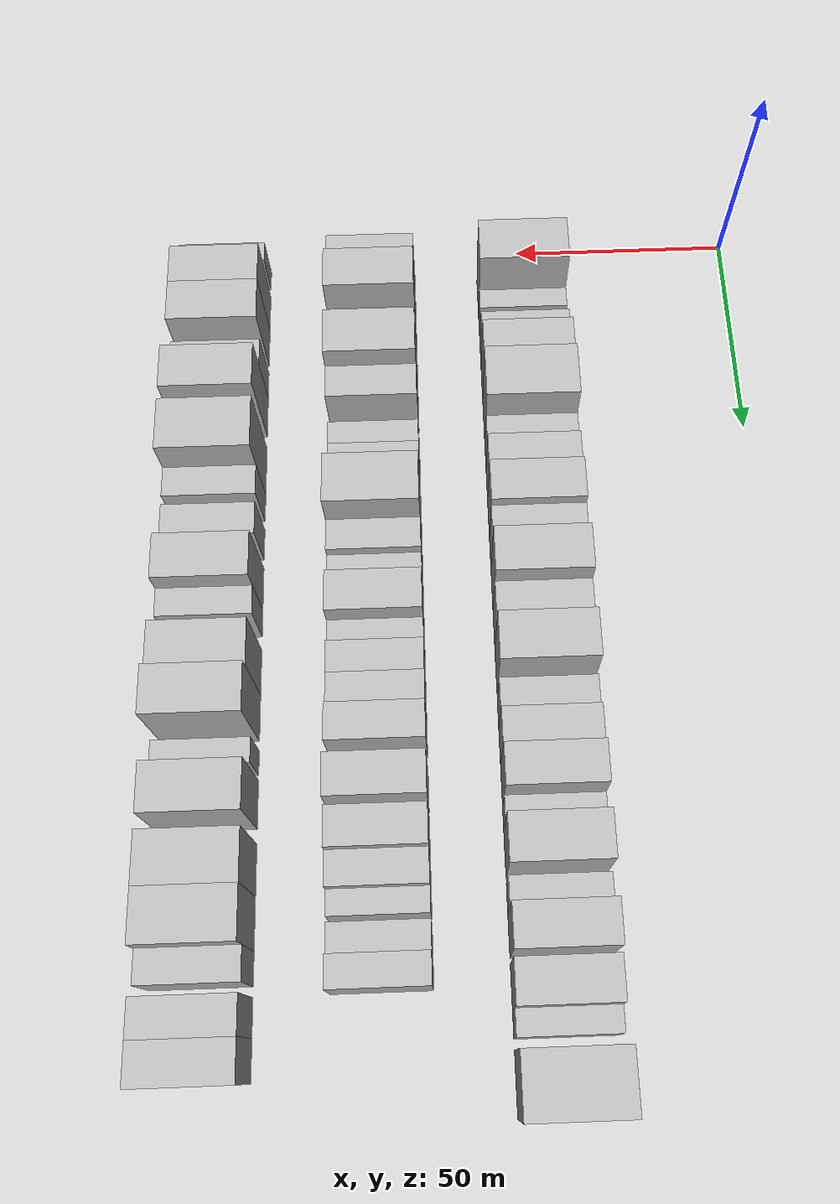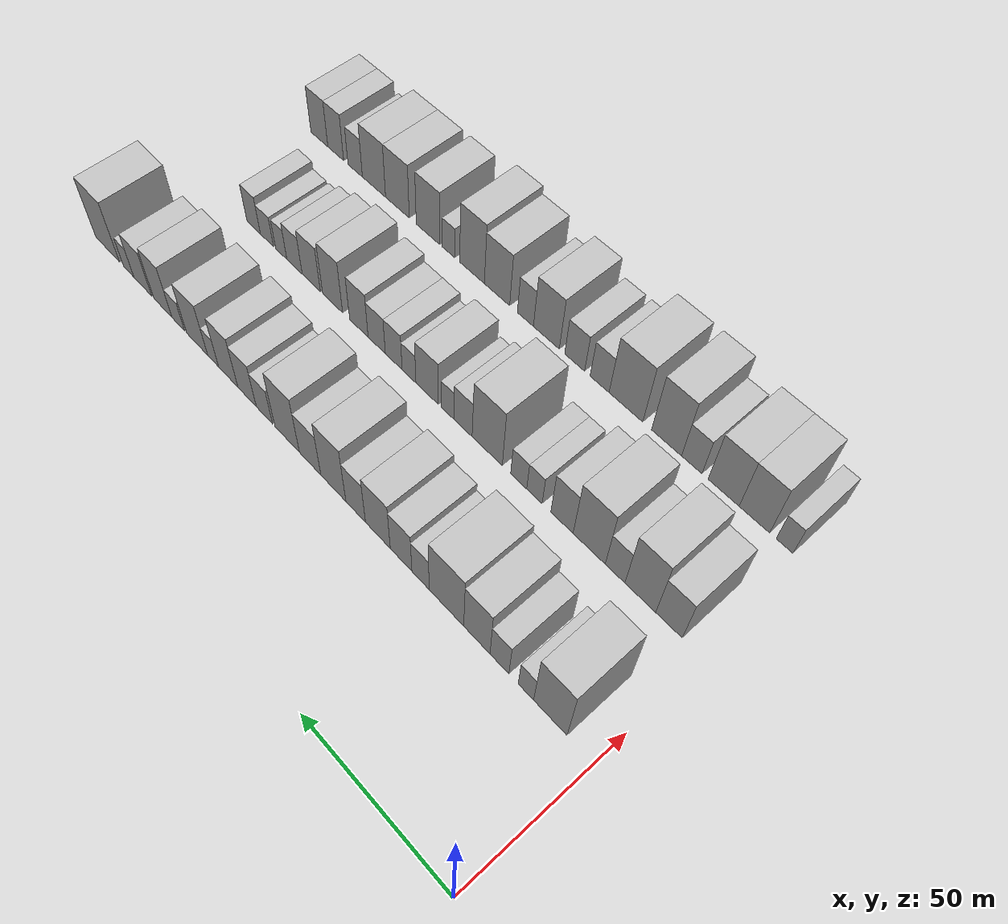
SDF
<sdf version="1.6">
 <world name="default">
  <model name="building_42">
   <static>1</static>
   <pose>50.0000 13.3271 0 0.000000 0.000000 0.000000</pose>
   <link name="link">
    <pose>0 0 12.00 0 0 0</pose>
    <collision name="collision"><geometry><box><size>20.0000 10.3897 24.0000</size></box></geometry></collision>
    <visual name="visual">
     <cast_shadows>0</cast_shadows>
     <geometry><box><size>20.0000 10.3897 24.0000</size></box></geometry>
     <material>
      <script>
       <uri>model://HANNAS_wall/materials/scripts</uri>
       <uri>model://HANNAS_wall/materials/textures</uri>
       <name>vrc/HANNAS_wall</name>
      </script>
     </material>
    </visual>
   </link>
  </model>
  <model name="building_43">
   <static>1</static>
   <pose>50.0000 20.9626 0 0.000000 0.000000 0.000000</pose>
   <link name="link">
    <pose>0 0 6.00 0 0 0</pose>
    <collision name="collision"><geometry><box><size>20.0000 4.8814 12.0000</size></box></geometry></collision>
    <visual name="visual">
     <cast_shadows>0</cast_shadows>
     <geometry><box><size>20.0000 4.8814 12.0000</size></box></geometry>
     <material>
      <script>
       <uri>model://HANNAS_wall/materials/scripts</uri>
       <uri>model://HANNAS_wall/materials/textures</uri>
       <name>vrc/HANNAS_wall</name>
      </script>
     </material>
    </visual>
   </link>
  </model>
  <model name="building_44">
   <static>1</static>
   <pose>50.0000 29.4781 0 0.000000 0.000000 0.000000</pose>
   <link name="link">
    <pose>0 0 7.50 0 0 0</pose>
    <collision name="collision"><geometry><box><size>20.0000 6.1497 15.0000</size></box></geometry></collision>
    <visual name="visual">
     <cast_shadows>0</cast_shadows>
     <geometry><box><size>20.0000 6.1497 15.0000</size></box></geometry>
     <material>
      <script>
       <uri>model://HANNAS_wall/materials/scripts</uri>
       <uri>model://HANNAS_wall/materials/textures</uri>
       <name>vrc/HANNAS_wall</name>
      </script>
     </material>
    </visual>
   </link>
  </model>
  <model name="building_45">
   <static>1</static>
   <pose>50.0000 36.9410 0 0.000000 0.000000 0.000000</pose>
   <link name="link">
    <pose>0 0 10.50 0 0 0</pose>
    <collision name="collision"><geometry><box><size>20.0000 8.7761 21.0000</size></box></geometry></collision>
    <visual name="visual">
     <cast_shadows>0</cast_shadows>
     <geometry><box><size>20.0000 8.7761 21.0000</size></box></geometry>
     <material>
      <script>
       <uri>model://HANNAS_wall/materials/scripts</uri>
       <uri>model://HANNAS_wall/materials/textures</uri>
       <name>vrc/HANNAS_wall</name>
      </script>
     </material>
    </visual>
   </link>
  </model>
  <model name="building_46">
   <static>1</static>
   <pose>50.0000 47.2723 0 0.000000 0.000000 0.000000</pose>
   <link name="link">
    <pose>0 0 12.00 0 0 0</pose>
    <collision name="collision"><geometry><box><size>20.0000 11.8866 24.0000</size></box></geometry></collision>
    <visual name="visual">
     <cast_shadows>0</cast_shadows>
     <geometry><box><size>20.0000 11.8866 24.0000</size></box></geometry>
     <material>
      <script>
       <uri>model://HANNAS_wall/materials/scripts</uri>
       <uri>model://HANNAS_wall/materials/textures</uri>
       <name>vrc/HANNAS_wall</name>
      </script>
     </material>
    </visual>
   </link>
  </model>
  <model name="building_47">
   <static>1</static>
   <pose>50.0000 56.2705 0 0.000000 0.000000 0.000000</pose>
   <link name="link">
    <pose>0 0 7.50 0 0 0</pose>
    <collision name="collision"><geometry><box><size>20.0000 6.1097 15.0000</size></box></geometry></collision>
    <visual name="visual">
     <cast_shadows>0</cast_shadows>
     <geometry><box><size>20.0000 6.1097 15.0000</size></box></geometry>
     <material>
      <script>
       <uri>model://HANNAS_wall/materials/scripts</uri>
       <uri>model://HANNAS_wall/materials/textures</uri>
       <name>vrc/HANNAS_wall</name>
      </script>
     </material>
    </visual>
   </link>
  </model>
  <model name="building_48">
   <static>1</static>
   <pose>50.0000 63.2182 0 0.000000 0.000000 0.000000</pose>
   <link name="link">
    <pose>0 0 9.00 0 0 0</pose>
    <collision name="collision"><geometry><box><size>20.0000 7.7858 18.0000</size></box></geometry></collision>
    <visual name="visual">
     <cast_shadows>0</cast_shadows>
     <geometry><box><size>20.0000 7.7858 18.0000</size></box></geometry>
     <material>
      <script>
       <uri>model://HANNAS_wall/materials/scripts</uri>
       <uri>model://HANNAS_wall/materials/textures</uri>
       <name>vrc/HANNAS_wall</name>
      </script>
     </material>
    </visual>
   </link>
  </model>
  <model name="building_49">
   <static>1</static>
   <pose>50.0000 71.7059 0 0.000000 0.000000 0.000000</pose>
   <link name="link">
    <pose>0 0 10.50 0 0 0</pose>
    <collision name="collision"><geometry><box><size>20.0000 9.1894 21.0000</size></box></geometry></collision>
    <visual name="visual">
     <cast_shadows>0</cast_shadows>
     <geometry><box><size>20.0000 9.1894 21.0000</size></box></geometry>
     <material>
      <script>
       <uri>model://HANNAS_wall/materials/scripts</uri>
       <uri>model://HANNAS_wall/materials/textures</uri>
       <name>vrc/HANNAS_wall</name>
      </script>
     </material>
    </visual>
   </link>
  </model>
  <model name="building_50">
   <static>1</static>
   <pose>50.0000 80.0003 0 0.000000 0.000000 0.000000</pose>
   <link name="link">
    <pose>0 0 9.00 0 0 0</pose>
    <collision name="collision"><geometry><box><size>20.0000 7.3994 18.0000</size></box></geometry></collision>
    <visual name="visual">
     <cast_shadows>0</cast_shadows>
     <geometry><box><size>20.0000 7.3994 18.0000</size></box></geometry>
     <material>
      <script>
       <uri>model://HANNAS_wall/materials/scripts</uri>
       <uri>model://HANNAS_wall/materials/textures</uri>
       <name>vrc/HANNAS_wall</name>
      </script>
     </material>
    </visual>
   </link>
  </model>
  <model name="building_51">
   <static>1</static>
   <pose>50.0000 88.5457 0 0.000000 0.000000 0.000000</pose>
   <link name="link">
    <pose>0 0 12.00 0 0 0</pose>
    <collision name="collision"><geometry><box><size>20.0000 9.6916 24.0000</size></box></geometry></collision>
    <visual name="visual">
     <cast_shadows>0</cast_shadows>
     <geometry><box><size>20.0000 9.6916 24.0000</size></box></geometry>
     <material>
      <script>
       <uri>model://HANNAS_wall/materials/scripts</uri>
       <uri>model://HANNAS_wall/materials/textures</uri>
       <name>vrc/HANNAS_wall</name>
      </script>
     </material>
    </visual>
   </link>
  </model>
  <model name="building_52">
   <static>1</static>
   <pose>50.0000 97.6655 0 0.000000 0.000000 0.000000</pose>
   <link name="link">
    <pose>0 0 9.00 0 0 0</pose>
    <collision name="collision"><geometry><box><size>20.0000 8.5480 18.0000</size></box></geometry></collision>
    <visual name="visual">
     <cast_shadows>0</cast_shadows>
     <geometry><box><size>20.0000 8.5480 18.0000</size></box></geometry>
     <material>
      <script>
       <uri>model://HANNAS_wall/materials/scripts</uri>
       <uri>model://HANNAS_wall/materials/textures</uri>
       <name>vrc/HANNAS_wall</name>
      </script>
     </material>
    </visual>
   </link>
  </model>
  <model name="building_53">
   <static>1</static>
   <pose>50.0000 106.9367 0 0.000000 0.000000 0.000000</pose>
   <link name="link">
    <pose>0 0 12.00 0 0 0</pose>
    <collision name="collision"><geometry><box><size>20.0000 9.9942 24.0000</size></box></geometry></collision>
    <visual name="visual">
     <cast_shadows>0</cast_shadows>
     <geometry><box><size>20.0000 9.9942 24.0000</size></box></geometry>
     <material>
      <script>
       <uri>model://HANNAS_wall/materials/scripts</uri>
       <uri>model://HANNAS_wall/materials/textures</uri>
       <name>vrc/HANNAS_wall</name>
      </script>
     </material>
    </visual>
   </link>
  </model>
  <model name="building_54">
   <static>1</static>
   <pose>50.0000 116.3106 0 0.000000 0.000000 0.000000</pose>
   <link name="link">
    <pose>0 0 7.50 0 0 0</pose>
    <collision name="collision"><geometry><box><size>20.0000 6.7537 15.0000</size></box></geometry></collision>
    <visual name="visual">
     <cast_shadows>0</cast_shadows>
     <geometry><box><size>20.0000 6.7537 15.0000</size></box></geometry>
     <material>
      <script>
       <uri>model://HANNAS_wall/materials/scripts</uri>
       <uri>model://HANNAS_wall/materials/textures</uri>
       <name>vrc/HANNAS_wall</name>
      </script>
     </material>
    </visual>
   </link>
  </model>
  <model name="building_55">
   <static>1</static>
   <pose>50.0000 123.6317 0 0.000000 0.000000 0.000000</pose>
   <link name="link">
    <pose>0 0 9.00 0 0 0</pose>
    <collision name="collision"><geometry><box><size>20.0000 7.8885 18.0000</size></box></geometry></collision>
    <visual name="visual">
     <cast_shadows>0</cast_shadows>
     <geometry><box><size>20.0000 7.8885 18.0000</size></box></geometry>
     <material>
      <script>
       <uri>model://HANNAS_wall/materials/scripts</uri>
       <uri>model://HANNAS_wall/materials/textures</uri>
       <name>vrc/HANNAS_wall</name>
      </script>
     </material>
    </visual>
   </link>
  </model>
  <model name="building_56">
   <static>1</static>
   <pose>50.0000 131.7996 0 0.000000 0.000000 0.000000</pose>
   <link name="link">
    <pose>0 0 10.50 0 0 0</pose>
    <collision name="collision"><geometry><box><size>20.0000 8.4473 21.0000</size></box></geometry></collision>
    <visual name="visual">
     <cast_shadows>0</cast_shadows>
     <geometry><box><size>20.0000 8.4473 21.0000</size></box></geometry>
     <material>
      <script>
       <uri>model://HANNAS_wall/materials/scripts</uri>
       <uri>model://HANNAS_wall/materials/textures</uri>
       <name>vrc/HANNAS_wall</name>
      </script>
     </material>
    </visual>
   </link>
  </model>
  <model name="building_57">
   <static>1</static>
   <pose>50.0000 138.4441 0 0.000000 0.000000 0.000000</pose>
   <link name="link">
    <pose>0 0 6.00 0 0 0</pose>
    <collision name="collision"><geometry><box><size>20.0000 4.8417 12.0000</size></box></geometry></collision>
    <visual name="visual">
     <cast_shadows>0</cast_shadows>
     <geometry><box><size>20.0000 4.8417 12.0000</size></box></geometry>
     <material>
      <script>
       <uri>model://HANNAS_wall/materials/scripts</uri>
       <uri>model://HANNAS_wall/materials/textures</uri>
       <name>vrc/HANNAS_wall</name>
      </script>
     </material>
    </visual>
   </link>
  </model>
  <model name="building_58">
   <static>1</static>
   <pose>50.0000 145.6218 0 0.000000 0.000000 0.000000</pose>
   <link name="link">
    <pose>0 0 10.50 0 0 0</pose>
    <collision name="collision"><geometry><box><size>20.0000 9.5137 21.0000</size></box></geometry></collision>
    <visual name="visual">
     <cast_shadows>0</cast_shadows>
     <geometry><box><size>20.0000 9.5137 21.0000</size></box></geometry>
     <material>
      <script>
       <uri>model://HANNAS_wall/materials/scripts</uri>
       <uri>model://HANNAS_wall/materials/textures</uri>
       <name>vrc/HANNAS_wall</name>
      </script>
     </material>
    </visual>
   </link>
  </model>
  <model name="building_59">
   <static>1</static>
   <pose>50.0000 154.2735 0 0.000000 0.000000 0.000000</pose>
   <link name="link">
    <pose>0 0 6.00 0 0 0</pose>
    <collision name="collision"><geometry><box><size>20.0000 5.7897 12.0000</size></box></geometry></collision>
    <visual name="visual">
     <cast_shadows>0</cast_shadows>
     <geometry><box><size>20.0000 5.7897 12.0000</size></box></geometry>
     <material>
      <script>
       <uri>model://HANNAS_wall/materials/scripts</uri>
       <uri>model://HANNAS_wall/materials/textures</uri>
       <name>vrc/HANNAS_wall</name>
      </script>
     </material>
    </visual>
   </link>
  </model>
  <model name="building_60">
   <static>1</static>
   <pose>50.0000 161.4640 0 0.000000 0.000000 0.000000</pose>
   <link name="link">
    <pose>0 0 10.50 0 0 0</pose>
    <collision name="collision"><geometry><box><size>20.0000 8.5913 21.0000</size></box></geometry></collision>
    <visual name="visual">
     <cast_shadows>0</cast_shadows>
     <geometry><box><size>20.0000 8.5913 21.0000</size></box></geometry>
     <material>
      <script>
       <uri>model://HANNAS_wall/materials/scripts</uri>
       <uri>model://HANNAS_wall/materials/textures</uri>
       <name>vrc/HANNAS_wall</name>
      </script>
     </material>
    </visual>
   </link>
  </model>
  <model name="building_61">
   <static>1</static>
   <pose>50.0000 171.0575 0 0.000000 0.000000 0.000000</pose>
   <link name="link">
    <pose>0 0 9.00 0 0 0</pose>
    <collision name="collision"><geometry><box><size>20.0000 8.5957 18.0000</size></box></geometry></collision>
    <visual name="visual">
     <cast_shadows>0</cast_shadows>
     <geometry><box><size>20.0000 8.5957 18.0000</size></box></geometry>
     <material>
      <script>
       <uri>model://HANNAS_wall/materials/scripts</uri>
       <uri>model://HANNAS_wall/materials/textures</uri>
       <name>vrc/HANNAS_wall</name>
      </script>
     </material>
    </visual>
   </link>
  </model>
  <model name="building_62">
   <static>1</static>
   <pose>50.0000 177.9104 0 0.000000 0.000000 0.000000</pose>
   <link name="link">
    <pose>0 0 6.00 0 0 0</pose>
    <collision name="collision"><geometry><box><size>20.0000 5.1101 12.0000</size></box></geometry></collision>
    <visual name="visual">
     <cast_shadows>0</cast_shadows>
     <geometry><box><size>20.0000 5.1101 12.0000</size></box></geometry>
     <material>
      <script>
       <uri>model://HANNAS_wall/materials/scripts</uri>
       <uri>model://HANNAS_wall/materials/textures</uri>
       <name>vrc/HANNAS_wall</name>
      </script>
     </material>
    </visual>
   </link>
  </model>
  <model name="building_63">
   <static>1</static>
   <pose>50.0000 188.4641 0 0.000000 0.000000 0.000000</pose>
   <link name="link">
    <pose>0 0 12.00 0 0 0</pose>
    <collision name="collision"><geometry><box><size>20.0000 11.9973 24.0000</size></box></geometry></collision>
    <visual name="visual">
     <cast_shadows>0</cast_shadows>
     <geometry><box><size>20.0000 11.9973 24.0000</size></box></geometry>
     <material>
      <script>
       <uri>model://HANNAS_wall/materials/scripts</uri>
       <uri>model://HANNAS_wall/materials/textures</uri>
       <name>vrc/HANNAS_wall</name>
      </script>
     </material>
    </visual>
   </link>
  </model>
  <model name="building_128">
   <static>1</static>
   <pose>85.0000 10.6261 0 0.000000 0.000000 0.000000</pose>
   <link name="link">
    <pose>0 0 9.00 0 0 0</pose>
    <collision name="collision"><geometry><box><size>20.0000 8.1376 18.0000</size></box></geometry></collision>
    <visual name="visual">
     <cast_shadows>0</cast_shadows>
     <geometry><box><size>20.0000 8.1376 18.0000</size></box></geometry>
     <material>
      <script>
       <uri>model://HANNAS_wall/materials/scripts</uri>
       <uri>model://HANNAS_wall/materials/textures</uri>
       <name>vrc/HANNAS_wall</name>
      </script>
     </material>
    </visual>
   </link>
  </model>
  <model name="building_129">
   <static>1</static>
   <pose>85.0000 19.5484 0 0.000000 0.000000 0.000000</pose>
   <link name="link">
    <pose>0 0 12.00 0 0 0</pose>
    <collision name="collision"><geometry><box><size>20.0000 9.7070 24.0000</size></box></geometry></collision>
    <visual name="visual">
     <cast_shadows>0</cast_shadows>
     <geometry><box><size>20.0000 9.7070 24.0000</size></box></geometry>
     <material>
      <script>
       <uri>model://HANNAS_wall/materials/scripts</uri>
       <uri>model://HANNAS_wall/materials/textures</uri>
       <name>vrc/HANNAS_wall</name>
      </script>
     </material>
    </visual>
   </link>
  </model>
  <model name="building_130">
   <static>1</static>
   <pose>85.0000 27.5702 0 0.000000 0.000000 0.000000</pose>
   <link name="link">
    <pose>0 0 7.50 0 0 0</pose>
    <collision name="collision"><geometry><box><size>20.0000 6.3366 15.0000</size></box></geometry></collision>
    <visual name="visual">
     <cast_shadows>0</cast_shadows>
     <geometry><box><size>20.0000 6.3366 15.0000</size></box></geometry>
     <material>
      <script>
       <uri>model://HANNAS_wall/materials/scripts</uri>
       <uri>model://HANNAS_wall/materials/textures</uri>
       <name>vrc/HANNAS_wall</name>
      </script>
     </material>
    </visual>
   </link>
  </model>
  <model name="building_131">
   <static>1</static>
   <pose>85.0000 36.0484 0 0.000000 0.000000 0.000000</pose>
   <link name="link">
    <pose>0 0 12.00 0 0 0</pose>
    <collision name="collision"><geometry><box><size>20.0000 10.6198 24.0000</size></box></geometry></collision>
    <visual name="visual">
     <cast_shadows>0</cast_shadows>
     <geometry><box><size>20.0000 10.6198 24.0000</size></box></geometry>
     <material>
      <script>
       <uri>model://HANNAS_wall/materials/scripts</uri>
       <uri>model://HANNAS_wall/materials/textures</uri>
       <name>vrc/HANNAS_wall</name>
      </script>
     </material>
    </visual>
   </link>
  </model>
  <model name="building_132">
   <static>1</static>
   <pose>85.0000 45.1411 0 0.000000 0.000000 0.000000</pose>
   <link name="link">
    <pose>0 0 9.00 0 0 0</pose>
    <collision name="collision"><geometry><box><size>20.0000 7.5656 18.0000</size></box></geometry></collision>
    <visual name="visual">
     <cast_shadows>0</cast_shadows>
     <geometry><box><size>20.0000 7.5656 18.0000</size></box></geometry>
     <material>
      <script>
       <uri>model://HANNAS_wall/materials/scripts</uri>
       <uri>model://HANNAS_wall/materials/textures</uri>
       <name>vrc/HANNAS_wall</name>
      </script>
     </material>
    </visual>
   </link>
  </model>
  <model name="building_133">
   <static>1</static>
   <pose>85.0000 54.5978 0 0.000000 0.000000 0.000000</pose>
   <link name="link">
    <pose>0 0 6.00 0 0 0</pose>
    <collision name="collision"><geometry><box><size>20.0000 5.3477 12.0000</size></box></geometry></collision>
    <visual name="visual">
     <cast_shadows>0</cast_shadows>
     <geometry><box><size>20.0000 5.3477 12.0000</size></box></geometry>
     <material>
      <script>
       <uri>model://HANNAS_wall/materials/scripts</uri>
       <uri>model://HANNAS_wall/materials/textures</uri>
       <name>vrc/HANNAS_wall</name>
      </script>
     </material>
    </visual>
   </link>
  </model>
  <model name="building_134">
   <static>1</static>
   <pose>85.0000 60.1131 0 0.000000 0.000000 0.000000</pose>
   <link name="link">
    <pose>0 0 6.00 0 0 0</pose>
    <collision name="collision"><geometry><box><size>20.0000 5.6829 12.0000</size></box></geometry></collision>
    <visual name="visual">
     <cast_shadows>0</cast_shadows>
     <geometry><box><size>20.0000 5.6829 12.0000</size></box></geometry>
     <material>
      <script>
       <uri>model://HANNAS_wall/materials/scripts</uri>
       <uri>model://HANNAS_wall/materials/textures</uri>
       <name>vrc/HANNAS_wall</name>
      </script>
     </material>
    </visual>
   </link>
  </model>
  <model name="building_135">
   <static>1</static>
   <pose>85.0000 71.4660 0 0.000000 0.000000 0.000000</pose>
   <link name="link">
    <pose>0 0 12.00 0 0 0</pose>
    <collision name="collision"><geometry><box><size>20.0000 11.0228 24.0000</size></box></geometry></collision>
    <visual name="visual">
     <cast_shadows>0</cast_shadows>
     <geometry><box><size>20.0000 11.0228 24.0000</size></box></geometry>
     <material>
      <script>
       <uri>model://HANNAS_wall/materials/scripts</uri>
       <uri>model://HANNAS_wall/materials/textures</uri>
       <name>vrc/HANNAS_wall</name>
      </script>
     </material>
    </visual>
   </link>
  </model>
  <model name="building_136">
   <static>1</static>
   <pose>85.0000 80.4080 0 0.000000 0.000000 0.000000</pose>
   <link name="link">
    <pose>0 0 7.50 0 0 0</pose>
    <collision name="collision"><geometry><box><size>20.0000 6.8613 15.0000</size></box></geometry></collision>
    <visual name="visual">
     <cast_shadows>0</cast_shadows>
     <geometry><box><size>20.0000 6.8613 15.0000</size></box></geometry>
     <material>
      <script>
       <uri>model://HANNAS_wall/materials/scripts</uri>
       <uri>model://HANNAS_wall/materials/textures</uri>
       <name>vrc/HANNAS_wall</name>
      </script>
     </material>
    </visual>
   </link>
  </model>
  <model name="building_137">
   <static>1</static>
   <pose>85.0000 86.2534 0 0.000000 0.000000 0.000000</pose>
   <link name="link">
    <pose>0 0 6.00 0 0 0</pose>
    <collision name="collision"><geometry><box><size>20.0000 4.8294 12.0000</size></box></geometry></collision>
    <visual name="visual">
     <cast_shadows>0</cast_shadows>
     <geometry><box><size>20.0000 4.8294 12.0000</size></box></geometry>
     <material>
      <script>
       <uri>model://HANNAS_wall/materials/scripts</uri>
       <uri>model://HANNAS_wall/materials/textures</uri>
       <name>vrc/HANNAS_wall</name>
      </script>
     </material>
    </visual>
   </link>
  </model>
  <model name="building_138">
   <static>1</static>
   <pose>85.0000 94.0360 0 0.000000 0.000000 0.000000</pose>
   <link name="link">
    <pose>0 0 9.00 0 0 0</pose>
    <collision name="collision"><geometry><box><size>20.0000 8.7357 18.0000</size></box></geometry></collision>
    <visual name="visual">
     <cast_shadows>0</cast_shadows>
     <geometry><box><size>20.0000 8.7357 18.0000</size></box></geometry>
     <material>
      <script>
       <uri>model://HANNAS_wall/materials/scripts</uri>
       <uri>model://HANNAS_wall/materials/textures</uri>
       <name>vrc/HANNAS_wall</name>
      </script>
     </material>
    </visual>
   </link>
  </model>
  <model name="building_139">
   <static>1</static>
   <pose>85.0000 101.1326 0 0.000000 0.000000 0.000000</pose>
   <link name="link">
    <pose>0 0 6.00 0 0 0</pose>
    <collision name="collision"><geometry><box><size>20.0000 5.4576 12.0000</size></box></geometry></collision>
    <visual name="visual">
     <cast_shadows>0</cast_shadows>
     <geometry><box><size>20.0000 5.4576 12.0000</size></box></geometry>
     <material>
      <script>
       <uri>model://HANNAS_wall/materials/scripts</uri>
       <uri>model://HANNAS_wall/materials/textures</uri>
       <name>vrc/HANNAS_wall</name>
      </script>
     </material>
    </visual>
   </link>
  </model>
  <model name="building_140">
   <static>1</static>
   <pose>85.0000 107.2269 0 0.000000 0.000000 0.000000</pose>
   <link name="link">
    <pose>0 0 7.50 0 0 0</pose>
    <collision name="collision"><geometry><box><size>20.0000 6.7311 15.0000</size></box></geometry></collision>
    <visual name="visual">
     <cast_shadows>0</cast_shadows>
     <geometry><box><size>20.0000 6.7311 15.0000</size></box></geometry>
     <material>
      <script>
       <uri>model://HANNAS_wall/materials/scripts</uri>
       <uri>model://HANNAS_wall/materials/textures</uri>
       <name>vrc/HANNAS_wall</name>
      </script>
     </material>
    </visual>
   </link>
  </model>
  <model name="building_141">
   <static>1</static>
   <pose>85.0000 114.1103 0 0.000000 0.000000 0.000000</pose>
   <link name="link">
    <pose>0 0 7.50 0 0 0</pose>
    <collision name="collision"><geometry><box><size>20.0000 7.0357 15.0000</size></box></geometry></collision>
    <visual name="visual">
     <cast_shadows>0</cast_shadows>
     <geometry><box><size>20.0000 7.0357 15.0000</size></box></geometry>
     <material>
      <script>
       <uri>model://HANNAS_wall/materials/scripts</uri>
       <uri>model://HANNAS_wall/materials/textures</uri>
       <name>vrc/HANNAS_wall</name>
      </script>
     </material>
    </visual>
   </link>
  </model>
  <model name="building_142">
   <static>1</static>
   <pose>85.0000 121.4704 0 0.000000 0.000000 0.000000</pose>
   <link name="link">
    <pose>0 0 9.00 0 0 0</pose>
    <collision name="collision"><geometry><box><size>20.0000 7.6845 18.0000</size></box></geometry></collision>
    <visual name="visual">
     <cast_shadows>0</cast_shadows>
     <geometry><box><size>20.0000 7.6845 18.0000</size></box></geometry>
     <material>
      <script>
       <uri>model://HANNAS_wall/materials/scripts</uri>
       <uri>model://HANNAS_wall/materials/textures</uri>
       <name>vrc/HANNAS_wall</name>
      </script>
     </material>
    </visual>
   </link>
  </model>
  <model name="building_143">
   <static>1</static>
   <pose>85.0000 132.5855 0 0.000000 0.000000 0.000000</pose>
   <link name="link">
    <pose>0 0 10.50 0 0 0</pose>
    <collision name="collision"><geometry><box><size>20.0000 8.5458 21.0000</size></box></geometry></collision>
    <visual name="visual">
     <cast_shadows>0</cast_shadows>
     <geometry><box><size>20.0000 8.5458 21.0000</size></box></geometry>
     <material>
      <script>
       <uri>model://HANNAS_wall/materials/scripts</uri>
       <uri>model://HANNAS_wall/materials/textures</uri>
       <name>vrc/HANNAS_wall</name>
      </script>
     </material>
    </visual>
   </link>
  </model>
  <model name="building_144">
   <static>1</static>
   <pose>85.0000 141.8551 0 0.000000 0.000000 0.000000</pose>
   <link name="link">
    <pose>0 0 9.00 0 0 0</pose>
    <collision name="collision"><geometry><box><size>20.0000 7.9935 18.0000</size></box></geometry></collision>
    <visual name="visual">
     <cast_shadows>0</cast_shadows>
     <geometry><box><size>20.0000 7.9935 18.0000</size></box></geometry>
     <material>
      <script>
       <uri>model://HANNAS_wall/materials/scripts</uri>
       <uri>model://HANNAS_wall/materials/textures</uri>
       <name>vrc/HANNAS_wall</name>
      </script>
     </material>
    </visual>
   </link>
  </model>
  <model name="building_145">
   <static>1</static>
   <pose>85.0000 149.2985 0 0.000000 0.000000 0.000000</pose>
   <link name="link">
    <pose>0 0 7.50 0 0 0</pose>
    <collision name="collision"><geometry><box><size>20.0000 6.8933 15.0000</size></box></geometry></collision>
    <visual name="visual">
     <cast_shadows>0</cast_shadows>
     <geometry><box><size>20.0000 6.8933 15.0000</size></box></geometry>
     <material>
      <script>
       <uri>model://HANNAS_wall/materials/scripts</uri>
       <uri>model://HANNAS_wall/materials/textures</uri>
       <name>vrc/HANNAS_wall</name>
      </script>
     </material>
    </visual>
   </link>
  </model>
  <model name="building_146">
   <static>1</static>
   <pose>85.0000 155.2860 0 0.000000 0.000000 0.000000</pose>
   <link name="link">
    <pose>0 0 6.00 0 0 0</pose>
    <collision name="collision"><geometry><box><size>20.0000 5.0817 12.0000</size></box></geometry></collision>
    <visual name="visual">
     <cast_shadows>0</cast_shadows>
     <geometry><box><size>20.0000 5.0817 12.0000</size></box></geometry>
     <material>
      <script>
       <uri>model://HANNAS_wall/materials/scripts</uri>
       <uri>model://HANNAS_wall/materials/textures</uri>
       <name>vrc/HANNAS_wall</name>
      </script>
     </material>
    </visual>
   </link>
  </model>
  <model name="building_147">
   <static>1</static>
   <pose>85.0000 161.8084 0 0.000000 0.000000 0.000000</pose>
   <link name="link">
    <pose>0 0 6.00 0 0 0</pose>
    <collision name="collision"><geometry><box><size>20.0000 5.9630 12.0000</size></box></geometry></collision>
    <visual name="visual">
     <cast_shadows>0</cast_shadows>
     <geometry><box><size>20.0000 5.9630 12.0000</size></box></geometry>
     <material>
      <script>
       <uri>model://HANNAS_wall/materials/scripts</uri>
       <uri>model://HANNAS_wall/materials/textures</uri>
       <name>vrc/HANNAS_wall</name>
      </script>
     </material>
    </visual>
   </link>
  </model>
  <model name="building_148">
   <static>1</static>
   <pose>85.0000 167.9551 0 0.000000 0.000000 0.000000</pose>
   <link name="link">
    <pose>0 0 7.50 0 0 0</pose>
    <collision name="collision"><geometry><box><size>20.0000 6.3304 15.0000</size></box></geometry></collision>
    <visual name="visual">
     <cast_shadows>0</cast_shadows>
     <geometry><box><size>20.0000 6.3304 15.0000</size></box></geometry>
     <material>
      <script>
       <uri>model://HANNAS_wall/materials/scripts</uri>
       <uri>model://HANNAS_wall/materials/textures</uri>
       <name>vrc/HANNAS_wall</name>
      </script>
     </material>
    </visual>
   </link>
  </model>
  <model name="building_206">
   <static>1</static>
   <pose>120.0000 5.9389 0 0.000000 0.000000 0.000000</pose>
   <link name="link">
    <pose>0 0 6.00 0 0 0</pose>
    <collision name="collision"><geometry><box><size>20.0000 5.0818 12.0000</size></box></geometry></collision>
    <visual name="visual">
     <cast_shadows>0</cast_shadows>
     <geometry><box><size>20.0000 5.0818 12.0000</size></box></geometry>
     <material>
      <script>
       <uri>model://HANNAS_wall/materials/scripts</uri>
       <uri>model://HANNAS_wall/materials/textures</uri>
       <name>vrc/HANNAS_wall</name>
      </script>
     </material>
    </visual>
   </link>
  </model>
  <model name="building_207">
   <static>1</static>
   <pose>120.0000 15.2114 0 0.000000 0.000000 0.000000</pose>
   <link name="link">
    <pose>0 0 10.50 0 0 0</pose>
    <collision name="collision"><geometry><box><size>20.0000 9.4632 21.0000</size></box></geometry></collision>
    <visual name="visual">
     <cast_shadows>0</cast_shadows>
     <geometry><box><size>20.0000 9.4632 21.0000</size></box></geometry>
     <material>
      <script>
       <uri>model://HANNAS_wall/materials/scripts</uri>
       <uri>model://HANNAS_wall/materials/textures</uri>
       <name>vrc/HANNAS_wall</name>
      </script>
     </material>
    </visual>
   </link>
  </model>
  <model name="building_208">
   <static>1</static>
   <pose>120.0000 24.9006 0 0.000000 0.000000 0.000000</pose>
   <link name="link">
    <pose>0 0 10.50 0 0 0</pose>
    <collision name="collision"><geometry><box><size>20.0000 9.9153 21.0000</size></box></geometry></collision>
    <visual name="visual">
     <cast_shadows>0</cast_shadows>
     <geometry><box><size>20.0000 9.9153 21.0000</size></box></geometry>
     <material>
      <script>
       <uri>model://HANNAS_wall/materials/scripts</uri>
       <uri>model://HANNAS_wall/materials/textures</uri>
       <name>vrc/HANNAS_wall</name>
      </script>
     </material>
    </visual>
   </link>
  </model>
  <model name="building_209">
   <static>1</static>
   <pose>120.0000 35.2121 0 0.000000 0.000000 0.000000</pose>
   <link name="link">
    <pose>0 0 7.50 0 0 0</pose>
    <collision name="collision"><geometry><box><size>20.0000 6.7078 15.0000</size></box></geometry></collision>
    <visual name="visual">
     <cast_shadows>0</cast_shadows>
     <geometry><box><size>20.0000 6.7078 15.0000</size></box></geometry>
     <material>
      <script>
       <uri>model://HANNAS_wall/materials/scripts</uri>
       <uri>model://HANNAS_wall/materials/textures</uri>
       <name>vrc/HANNAS_wall</name>
      </script>
     </material>
    </visual>
   </link>
  </model>
  <model name="building_210">
   <static>1</static>
   <pose>120.0000 43.6137 0 0.000000 0.000000 0.000000</pose>
   <link name="link">
    <pose>0 0 12.00 0 0 0</pose>
    <collision name="collision"><geometry><box><size>20.0000 10.0954 24.0000</size></box></geometry></collision>
    <visual name="visual">
     <cast_shadows>0</cast_shadows>
     <geometry><box><size>20.0000 10.0954 24.0000</size></box></geometry>
     <material>
      <script>
       <uri>model://HANNAS_wall/materials/scripts</uri>
       <uri>model://HANNAS_wall/materials/textures</uri>
       <name>vrc/HANNAS_wall</name>
      </script>
     </material>
    </visual>
   </link>
  </model>
  <model name="building_211">
   <static>1</static>
   <pose>120.0000 57.5527 0 0.000000 0.000000 0.000000</pose>
   <link name="link">
    <pose>0 0 12.00 0 0 0</pose>
    <collision name="collision"><geometry><box><size>20.0000 11.7826 24.0000</size></box></geometry></collision>
    <visual name="visual">
     <cast_shadows>0</cast_shadows>
     <geometry><box><size>20.0000 11.7826 24.0000</size></box></geometry>
     <material>
      <script>
       <uri>model://HANNAS_wall/materials/scripts</uri>
       <uri>model://HANNAS_wall/materials/textures</uri>
       <name>vrc/HANNAS_wall</name>
      </script>
     </material>
    </visual>
   </link>
  </model>
  <model name="building_212">
   <static>1</static>
   <pose>120.0000 66.8361 0 0.000000 0.000000 0.000000</pose>
   <link name="link">
    <pose>0 0 7.50 0 0 0</pose>
    <collision name="collision"><geometry><box><size>20.0000 6.7840 15.0000</size></box></geometry></collision>
    <visual name="visual">
     <cast_shadows>0</cast_shadows>
     <geometry><box><size>20.0000 6.7840 15.0000</size></box></geometry>
     <material>
      <script>
       <uri>model://HANNAS_wall/materials/scripts</uri>
       <uri>model://HANNAS_wall/materials/textures</uri>
       <name>vrc/HANNAS_wall</name>
      </script>
     </material>
    </visual>
   </link>
  </model>
  <model name="building_213">
   <static>1</static>
   <pose>120.0000 75.8777 0 0.000000 0.000000 0.000000</pose>
   <link name="link">
    <pose>0 0 7.50 0 0 0</pose>
    <collision name="collision"><geometry><box><size>20.0000 7.2993 15.0000</size></box></geometry></collision>
    <visual name="visual">
     <cast_shadows>0</cast_shadows>
     <geometry><box><size>20.0000 7.2993 15.0000</size></box></geometry>
     <material>
      <script>
       <uri>model://HANNAS_wall/materials/scripts</uri>
       <uri>model://HANNAS_wall/materials/textures</uri>
       <name>vrc/HANNAS_wall</name>
      </script>
     </material>
    </visual>
   </link>
  </model>
  <model name="building_214">
   <static>1</static>
   <pose>120.0000 86.4088 0 0.000000 0.000000 0.000000</pose>
   <link name="link">
    <pose>0 0 10.50 0 0 0</pose>
    <collision name="collision"><geometry><box><size>20.0000 9.7629 21.0000</size></box></geometry></collision>
    <visual name="visual">
     <cast_shadows>0</cast_shadows>
     <geometry><box><size>20.0000 9.7629 21.0000</size></box></geometry>
     <material>
      <script>
       <uri>model://HANNAS_wall/materials/scripts</uri>
       <uri>model://HANNAS_wall/materials/textures</uri>
       <name>vrc/HANNAS_wall</name>
      </script>
     </material>
    </visual>
   </link>
  </model>
  <model name="building_215">
   <static>1</static>
   <pose>120.0000 94.3725 0 0.000000 0.000000 0.000000</pose>
   <link name="link">
    <pose>0 0 7.50 0 0 0</pose>
    <collision name="collision"><geometry><box><size>20.0000 6.1644 15.0000</size></box></geometry></collision>
    <visual name="visual">
     <cast_shadows>0</cast_shadows>
     <geometry><box><size>20.0000 6.1644 15.0000</size></box></geometry>
     <material>
      <script>
       <uri>model://HANNAS_wall/materials/scripts</uri>
       <uri>model://HANNAS_wall/materials/textures</uri>
       <name>vrc/HANNAS_wall</name>
      </script>
     </material>
    </visual>
   </link>
  </model>
  <model name="building_216">
   <static>1</static>
   <pose>120.0000 105.4703 0 0.000000 0.000000 0.000000</pose>
   <link name="link">
    <pose>0 0 10.50 0 0 0</pose>
    <collision name="collision"><geometry><box><size>20.0000 10.0311 21.0000</size></box></geometry></collision>
    <visual name="visual">
     <cast_shadows>0</cast_shadows>
     <geometry><box><size>20.0000 10.0311 21.0000</size></box></geometry>
     <material>
      <script>
       <uri>model://HANNAS_wall/materials/scripts</uri>
       <uri>model://HANNAS_wall/materials/textures</uri>
       <name>vrc/HANNAS_wall</name>
      </script>
     </material>
    </visual>
   </link>
  </model>
  <model name="building_217">
   <static>1</static>
   <pose>120.0000 115.5039 0 0.000000 0.000000 0.000000</pose>
   <link name="link">
    <pose>0 0 12.00 0 0 0</pose>
    <collision name="collision"><geometry><box><size>20.0000 10.0362 24.0000</size></box></geometry></collision>
    <visual name="visual">
     <cast_shadows>0</cast_shadows>
     <geometry><box><size>20.0000 10.0362 24.0000</size></box></geometry>
     <material>
      <script>
       <uri>model://HANNAS_wall/materials/scripts</uri>
       <uri>model://HANNAS_wall/materials/textures</uri>
       <name>vrc/HANNAS_wall</name>
      </script>
     </material>
    </visual>
   </link>
  </model>
  <model name="building_218">
   <static>1</static>
   <pose>120.0000 125.1436 0 0.000000 0.000000 0.000000</pose>
   <link name="link">
    <pose>0 0 6.00 0 0 0</pose>
    <collision name="collision"><geometry><box><size>20.0000 5.2432 12.0000</size></box></geometry></collision>
    <visual name="visual">
     <cast_shadows>0</cast_shadows>
     <geometry><box><size>20.0000 5.2432 12.0000</size></box></geometry>
     <material>
      <script>
       <uri>model://HANNAS_wall/materials/scripts</uri>
       <uri>model://HANNAS_wall/materials/textures</uri>
       <name>vrc/HANNAS_wall</name>
      </script>
     </material>
    </visual>
   </link>
  </model>
  <model name="building_219">
   <static>1</static>
   <pose>120.0000 133.7636 0 0.000000 0.000000 0.000000</pose>
   <link name="link">
    <pose>0 0 10.50 0 0 0</pose>
    <collision name="collision"><geometry><box><size>20.0000 9.9969 21.0000</size></box></geometry></collision>
    <visual name="visual">
     <cast_shadows>0</cast_shadows>
     <geometry><box><size>20.0000 9.9969 21.0000</size></box></geometry>
     <material>
      <script>
       <uri>model://HANNAS_wall/materials/scripts</uri>
       <uri>model://HANNAS_wall/materials/textures</uri>
       <name>vrc/HANNAS_wall</name>
      </script>
     </material>
    </visual>
   </link>
  </model>
  <model name="building_220">
   <static>1</static>
   <pose>120.0000 146.9600 0 0.000000 0.000000 0.000000</pose>
   <link name="link">
    <pose>0 0 10.50 0 0 0</pose>
    <collision name="collision"><geometry><box><size>20.0000 10.3959 21.0000</size></box></geometry></collision>
    <visual name="visual">
     <cast_shadows>0</cast_shadows>
     <geometry><box><size>20.0000 10.3959 21.0000</size></box></geometry>
     <material>
      <script>
       <uri>model://HANNAS_wall/materials/scripts</uri>
       <uri>model://HANNAS_wall/materials/textures</uri>
       <name>vrc/HANNAS_wall</name>
      </script>
     </material>
    </visual>
   </link>
  </model>
  <model name="building_221">
   <static>1</static>
   <pose>120.0000 157.3752 0 0.000000 0.000000 0.000000</pose>
   <link name="link">
    <pose>0 0 10.50 0 0 0</pose>
    <collision name="collision"><geometry><box><size>20.0000 10.4347 21.0000</size></box></geometry></collision>
    <visual name="visual">
     <cast_shadows>0</cast_shadows>
     <geometry><box><size>20.0000 10.4347 21.0000</size></box></geometry>
     <material>
      <script>
       <uri>model://HANNAS_wall/materials/scripts</uri>
       <uri>model://HANNAS_wall/materials/textures</uri>
       <name>vrc/HANNAS_wall</name>
      </script>
     </material>
    </visual>
   </link>
  </model>
  <model name="building_222">
   <static>1</static>
   <pose>120.0000 165.8916 0 0.000000 0.000000 0.000000</pose>
   <link name="link">
    <pose>0 0 7.50 0 0 0</pose>
    <collision name="collision"><geometry><box><size>20.0000 6.5979 15.0000</size></box></geometry></collision>
    <visual name="visual">
     <cast_shadows>0</cast_shadows>
     <geometry><box><size>20.0000 6.5979 15.0000</size></box></geometry>
     <material>
      <script>
       <uri>model://HANNAS_wall/materials/scripts</uri>
       <uri>model://HANNAS_wall/materials/textures</uri>
       <name>vrc/HANNAS_wall</name>
      </script>
     </material>
    </visual>
   </link>
  </model>
  <model name="building_223">
   <static>1</static>
   <pose>120.0000 174.8842 0 0.000000 0.000000 0.000000</pose>
   <link name="link">
    <pose>0 0 9.00 0 0 0</pose>
    <collision name="collision"><geometry><box><size>20.0000 7.3873 18.0000</size></box></geometry></collision>
    <visual name="visual">
     <cast_shadows>0</cast_shadows>
     <geometry><box><size>20.0000 7.3873 18.0000</size></box></geometry>
     <material>
      <script>
       <uri>model://HANNAS_wall/materials/scripts</uri>
       <uri>model://HANNAS_wall/materials/textures</uri>
       <name>vrc/HANNAS_wall</name>
      </script>
     </material>
    </visual>
   </link>
  </model>
  <model name="building_224">
   <static>1</static>
   <pose>120.0000 182.6030 0 0.000000 0.000000 0.000000</pose>
   <link name="link">
    <pose>0 0 9.00 0 0 0</pose>
    <collision name="collision"><geometry><box><size>20.0000 8.0502 18.0000</size></box></geometry></collision>
    <visual name="visual">
     <cast_shadows>0</cast_shadows>
     <geometry><box><size>20.0000 8.0502 18.0000</size></box></geometry>
     <material>
      <script>
       <uri>model://HANNAS_wall/materials/scripts</uri>
       <uri>model://HANNAS_wall/materials/textures</uri>
       <name>vrc/HANNAS_wall</name>
      </script>
     </material>
    </visual>
   </link>
  </model>
 </world>
</sdf>
